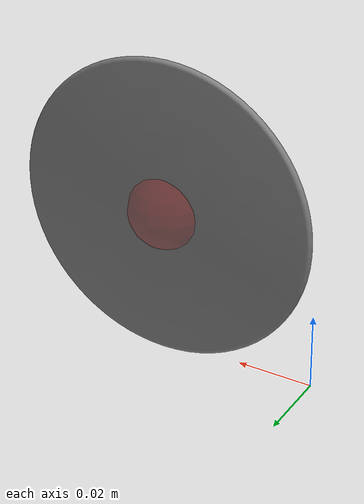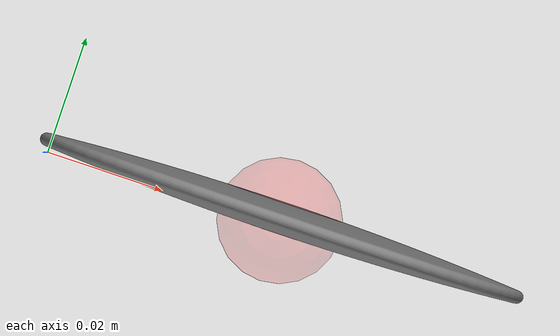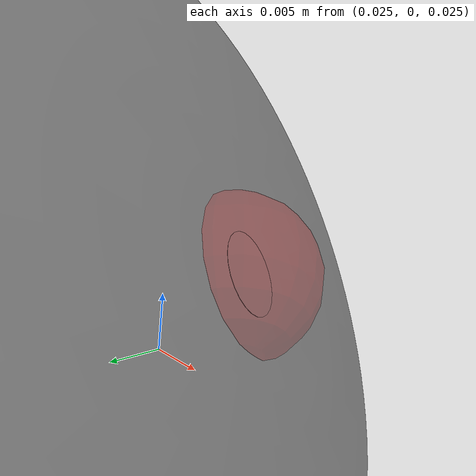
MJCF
<mujoco model="pita">
    <compiler angle="radian" meshdir="../meshes/" autolimits="true"/>
    <option solver="CG" tolerance="1e-6" impratio="10"/>
    <size nconmax="500" njmax="5000" nstack="5000000"/>

    <asset>
        <mesh name="pita" file="pita.STL" scale="0.001 0.001 0.001"/>

    </asset>

    <default>
      <default class="pita">
        <general biastype="affine"/>
        <default class="pitavisual">
            <geom type="mesh" solimp="0.95 0.99 0.001" solref="0.004 1" priority="1" contype="0" conaffinity="0" group="2"/>
        </default>
        <default class="pitacollision">
            <geom type="mesh" group="3"/>
        </default>
      </default>

    </default>

    <worldbody>
    <site name="pita_pos_world" pos="0.04 0.002 0.04" size="0.01 0.01 0.01" type="sphere" rgba="1 0 0 0.2"/>
        <body name="pita" pos="0 0 0" quat="1 0 0 0">
            <inertial pos="0.04 0.002 0.04" quat="0.5 -0.5 0.5 0.5" mass="1" diaginertia="0.0003 0.0003 0.0005" />
            <geom class="pitavisual" friction="0.7" mesh="pita" />
            <geom class="pitacollision" mesh="pita" />
            <site name="pita_pos" pos="0.04 0.002 0.04" size="0.01 0.01 0.01" type="sphere" rgba="1 1 1 0.1"/>
            <body name="PitaMid" pos="0.04 0.002 0.04" quat="0.707 -0.707 0 0">
                <geom type="cylinder" size="0.005 0.002 0"/>
            </body>
        </body>
    </worldbody>

</mujoco>
